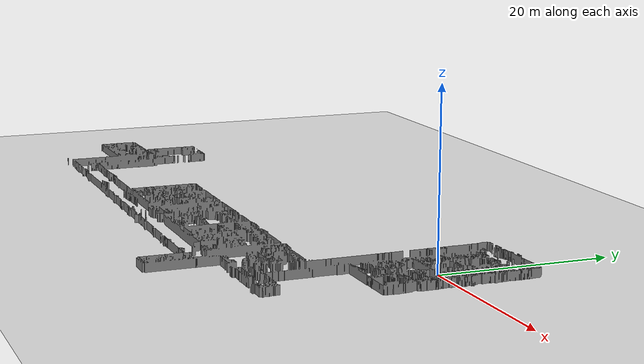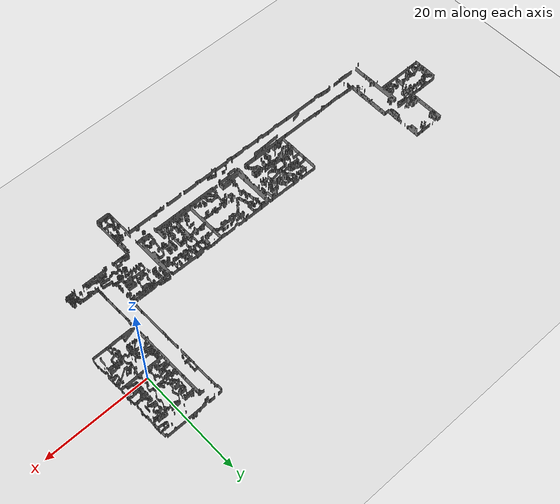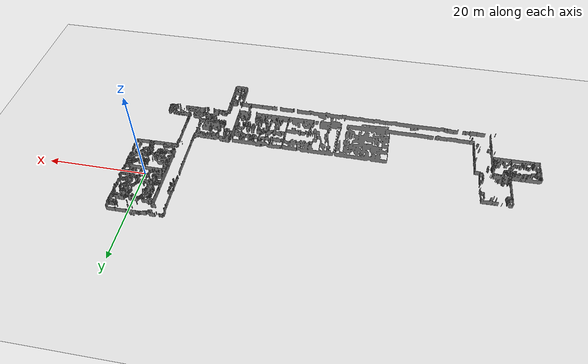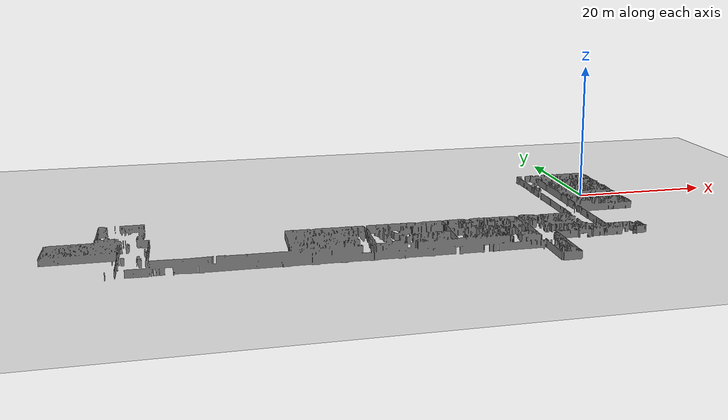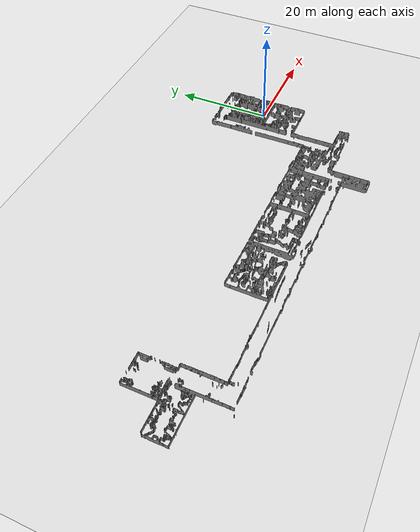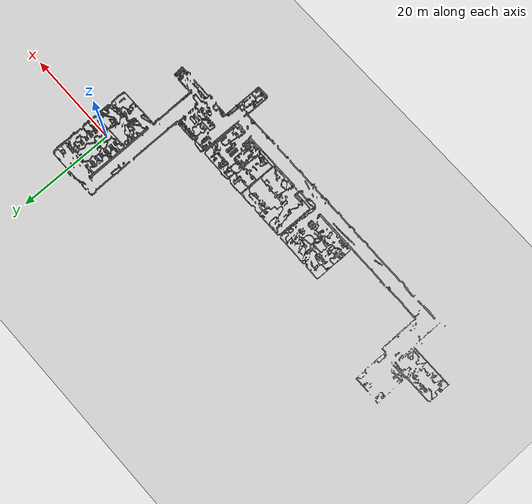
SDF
<?xml version="1.0" ?>
<sdf version="1.10">
  <world name="cbnu_scan">

    <!-- Gz Sim required plugins -->
    <!-- Bullet Featherstone handles static mesh collision via BVH; DART crashed on the earlier 17k-face mesh -->
    <plugin name="gz::sim::systems::Physics" filename="gz-sim-physics-system">
      <engine>
        <filename>gz-physics7-bullet-featherstone-plugin</filename>
      </engine>
    </plugin>
    <plugin name="gz::sim::systems::UserCommands" filename="gz-sim-user-commands-system"/>
    <plugin name="gz::sim::systems::SceneBroadcaster" filename="gz-sim-scene-broadcaster-system"/>
    <plugin name="gz::sim::systems::Contact" filename="gz-sim-contact-system"/>
    <plugin name="gz::sim::systems::Sensors" filename="gz-sim-sensors-system">
      <render_engine>ogre2</render_engine>
    </plugin>

    <!-- Physics settings -->
    <physics name="4ms" type="ignored">
      <max_step_size>0.004</max_step_size>
      <real_time_factor>1.0</real_time_factor>
      <real_time_update_rate>250</real_time_update_rate>
    </physics>

    <gravity>0 0 -9.8</gravity>
    <atmosphere type="adiabatic"/>

    <scene>
      <ambient>0.4 0.4 0.4 1</ambient>
      <background>0.7 0.7 0.7 1</background>
      <shadows>true</shadows>
    </scene>

    <!-- Directional light (replaces model://sun) -->
    <light name="sun" type="directional">
      <cast_shadows>true</cast_shadows>
      <pose>0 0 10 0 0 0</pose>
      <diffuse>0.8 0.8 0.8 1</diffuse>
      <specular>0.2 0.2 0.2 1</specular>
      <direction>-0.5 0.1 -0.9</direction>
    </light>

    <!-- CBNU scan-derived map. Generated by tools/cbnu_scan/build_site.py, do not edit. -->
    <!-- The walls are the outline of the occupied cells of maps/CBNU_scan.pgm, so this world -->
    <!-- is the map by construction. It tests the navigation stack on the map and says     -->
    <!-- nothing about how well the map matches the building.                              -->
    <model name="ground_plane">
      <static>true</static>
      <link name="link">
        <collision name="collision">
          <geometry><plane><normal>0 0 1</normal><size>82.55 38.85</size></plane></geometry>
          <surface>
            <friction>
              <!-- Bullet Featherstone needs torsional 0 here or the robot cannot yaw (CLAUDE.md). -->
              <torsional><coefficient>0</coefficient></torsional>
              <ode><mu>100</mu><mu2>50</mu2></ode>
            </friction>
          </surface>
        </collision>
        <visual name="visual">
          <cast_shadows>false</cast_shadows>
          <geometry><plane><normal>0 0 1</normal><size>82.55 38.85</size></plane></geometry>
          <material><ambient>0.9 0.9 0.9 1</ambient><diffuse>0.9 0.9 0.9 1</diffuse></material>
        </visual>
      </link>
      <pose>-36.484 -9.194 -0.01 0 0 0</pose>
    </model>
    <model name="cbnu_scan_walls">
      <static>true</static>
      <link name="link">
        <collision name="collision">
          <geometry><mesh><uri>file:///home/jason/ros2_ws/src/spatial_maps/meshes/cbnu_scan_walls.obj</uri></mesh></geometry>
        </collision>
        <visual name="visual">
          <geometry><mesh><uri>file:///home/jason/ros2_ws/src/spatial_maps/meshes/cbnu_scan_walls.obj</uri></mesh></geometry>
          <material><ambient>0.5 0.5 0.5 1</ambient><diffuse>0.5 0.5 0.5 1</diffuse></material>
        </visual>
      </link>
      <pose>0 0 0 0 0 0</pose>
    </model>
    <!-- Invisible perimeter fence 1 m outside each map edge, as on 1F. -->
    <model name="fence_west"><static>true</static><link name="link"><collision name="col"><geometry><box><size>0.20 41.25 3.0</size></box></geometry></collision></link><pose>-78.759 -9.194 1.5 0 0 0</pose></model>
    <model name="fence_east"><static>true</static><link name="link"><collision name="col"><geometry><box><size>0.20 41.25 3.0</size></box></geometry></collision></link><pose>5.791 -9.194 1.5 0 0 0</pose></model>
    <model name="fence_south"><static>true</static><link name="link"><collision name="col"><geometry><box><size>84.95 0.20 3.0</size></box></geometry></collision></link><pose>-36.484 -29.619 1.5 0 0 0</pose></model>
    <model name="fence_north"><static>true</static><link name="link"><collision name="col"><geometry><box><size>84.95 0.20 3.0</size></box></geometry></collision></link><pose>-36.484 11.231 1.5 0 0 0</pose></model>
  </world>
</sdf>
